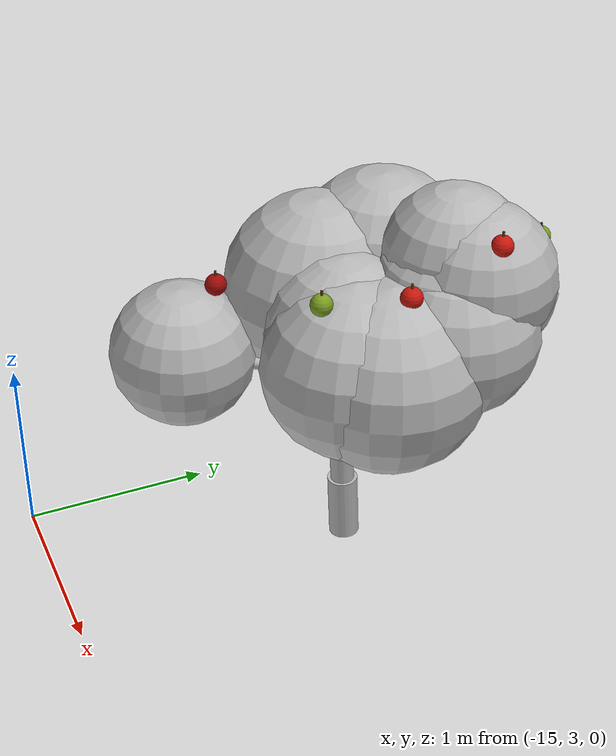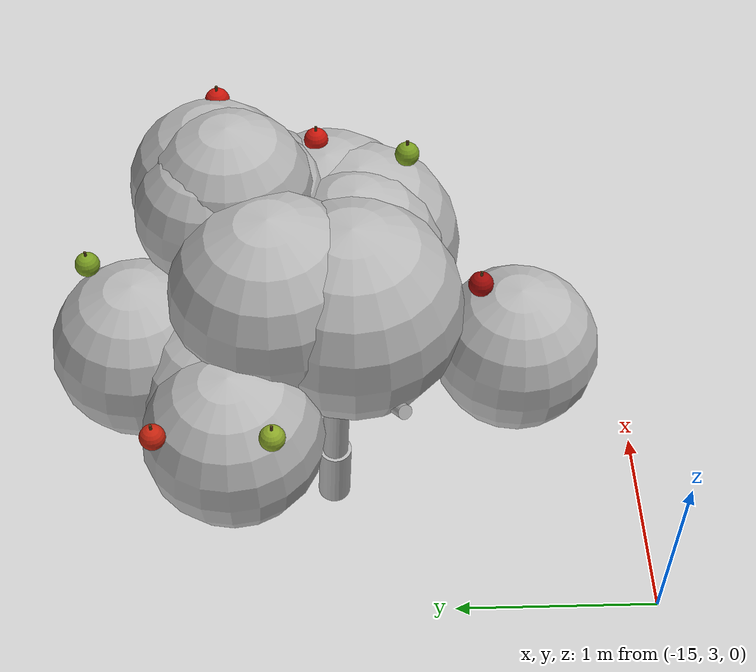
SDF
<sdf version="1.6">
 <world name="default">
  <model name="tree_r4_t1">
   <static>true</static>
   <link name="tree_r4_t1_trunk0">
    <pose>-14.2627 4.5879 0.1757 0.0320 -0.0273 0</pose>
    <collision name="tree_r4_t1_trunk0_c">
     <geometry><cylinder><radius>0.0819</radius><length>0.3724</length></cylinder></geometry>
    </collision>
    <visual name="tree_r4_t1_trunk0_v">
     <geometry><cylinder><radius>0.0819</radius><length>0.3724</length></cylinder></geometry>
     <material>
      <script>
       <uri>model://orchard/materials/scripts</uri>
       <uri>model://orchard/materials/textures</uri>
       <name>Orchard/Bark</name>
      </script>
     </material>
    </visual>
   </link>
   <link name="tree_r4_t1_trunk1">
    <pose>-14.2723 4.5766 0.5270 0.0320 -0.0273 0</pose>
    <visual name="tree_r4_t1_trunk1_v">
     <geometry><cylinder><radius>0.0639</radius><length>0.3724</length></cylinder></geometry>
     <material>
      <script>
       <uri>model://orchard/materials/scripts</uri>
       <uri>model://orchard/materials/textures</uri>
       <name>Orchard/Bark</name>
      </script>
     </material>
    </visual>
   </link>
   <link name="tree_r4_t1_trunk2">
    <pose>-14.2818 4.5654 0.8784 0.0320 -0.0273 0</pose>
    <visual name="tree_r4_t1_trunk2_v">
     <geometry><cylinder><radius>0.0459</radius><length>0.3724</length></cylinder></geometry>
     <material>
      <script>
       <uri>model://orchard/materials/scripts</uri>
       <uri>model://orchard/materials/textures</uri>
       <name>Orchard/Bark</name>
      </script>
     </material>
    </visual>
   </link>
   <link name="tree_r4_t1_br0">
    <pose>-14.0083 4.6179 1.2649 0.0000 0.9328 0.2061</pose>
    <visual name="tree_r4_t1_br0_v">
     <geometry><cylinder><radius>0.0259</radius><length>0.7080</length></cylinder></geometry>
     <material>
      <script>
       <uri>model://orchard/materials/scripts</uri>
       <uri>model://orchard/materials/textures</uri>
       <name>Orchard/Bark</name>
      </script>
     </material>
    </visual>
   </link>
   <link name="tree_r4_t1_br1">
    <pose>-14.1838 4.7425 1.3259 0.0000 0.6569 1.0582</pose>
    <visual name="tree_r4_t1_br1_v">
     <geometry><cylinder><radius>0.0263</radius><length>0.6866</length></cylinder></geometry>
     <material>
      <script>
       <uri>model://orchard/materials/scripts</uri>
       <uri>model://orchard/materials/textures</uri>
       <name>Orchard/Bark</name>
      </script>
     </material>
    </visual>
   </link>
   <link name="tree_r4_t1_br2">
    <pose>-14.2797 4.9413 1.2281 0.0000 1.1428 1.5525</pose>
    <visual name="tree_r4_t1_br2_v">
     <geometry><cylinder><radius>0.0227</radius><length>0.8388</length></cylinder></geometry>
     <material>
      <script>
       <uri>model://orchard/materials/scripts</uri>
       <uri>model://orchard/materials/textures</uri>
       <name>Orchard/Bark</name>
      </script>
     </material>
    </visual>
   </link>
   <link name="tree_r4_t1_br3">
    <pose>-14.5066 4.7124 1.2024 0.0000 1.0648 2.5350</pose>
    <visual name="tree_r4_t1_br3_v">
     <geometry><cylinder><radius>0.0351</radius><length>0.6122</length></cylinder></geometry>
     <material>
      <script>
       <uri>model://orchard/materials/scripts</uri>
       <uri>model://orchard/materials/textures</uri>
       <name>Orchard/Bark</name>
      </script>
     </material>
    </visual>
   </link>
   <link name="tree_r4_t1_br4">
    <pose>-14.5593 4.4156 1.2259 0.0000 1.0623 3.6281</pose>
    <visual name="tree_r4_t1_br4_v">
     <geometry><cylinder><radius>0.0335</radius><length>0.7061</length></cylinder></geometry>
     <material>
      <script>
       <uri>model://orchard/materials/scripts</uri>
       <uri>model://orchard/materials/textures</uri>
       <name>Orchard/Bark</name>
      </script>
     </material>
    </visual>
   </link>
   <link name="tree_r4_t1_br5">
    <pose>-14.2442 4.1810 1.2345 0.0000 1.1287 4.8240</pose>
    <visual name="tree_r4_t1_br5_v">
     <geometry><cylinder><radius>0.0294</radius><length>0.8434</length></cylinder></geometry>
     <material>
      <script>
       <uri>model://orchard/materials/scripts</uri>
       <uri>model://orchard/materials/textures</uri>
       <name>Orchard/Bark</name>
      </script>
     </material>
    </visual>
   </link>
   <link name="tree_r4_t1_br6">
    <pose>-14.0881 4.3539 1.2485 0.0000 0.9736 5.4797</pose>
    <visual name="tree_r4_t1_br6_v">
     <geometry><cylinder><radius>0.0221</radius><length>0.6917</length></cylinder></geometry>
     <material>
      <script>
       <uri>model://orchard/materials/scripts</uri>
       <uri>model://orchard/materials/textures</uri>
       <name>Orchard/Bark</name>
      </script>
     </material>
    </visual>
   </link>
   <link name="tree_r4_t1_fol0">
    <pose>-13.9051 4.6902 1.4569 0 0 0</pose>
    <visual name="tree_r4_t1_fol0_v">
     <geometry><sphere><radius>0.4121</radius></sphere></geometry>
     <material>
      <script>
       <uri>model://orchard/materials/scripts</uri>
       <uri>model://orchard/materials/textures</uri>
       <name>Orchard/Foliage2</name>
      </script>
     </material>
    </visual>
   </link>
   <link name="tree_r4_t1_fol1">
    <pose>-14.0121 5.0888 1.8020 0 0 0</pose>
    <visual name="tree_r4_t1_fol1_v">
     <geometry><sphere><radius>0.3483</radius></sphere></geometry>
     <material>
      <script>
       <uri>model://orchard/materials/scripts</uri>
       <uri>model://orchard/materials/textures</uri>
       <name>Orchard/Foliage2</name>
      </script>
     </material>
    </visual>
   </link>
   <link name="tree_r4_t1_fol2">
    <pose>-14.3782 5.4310 1.3282 0 0 0</pose>
    <visual name="tree_r4_t1_fol2_v">
     <geometry><sphere><radius>0.4002</radius></sphere></geometry>
     <material>
      <script>
       <uri>model://orchard/materials/scripts</uri>
       <uri>model://orchard/materials/textures</uri>
       <name>Orchard/Foliage3</name>
      </script>
     </material>
    </visual>
   </link>
   <link name="tree_r4_t1_fol3">
    <pose>-14.3863 4.8300 1.6701 0 0 0</pose>
    <visual name="tree_r4_t1_fol3_v">
     <geometry><sphere><radius>0.4539</radius></sphere></geometry>
     <material>
      <script>
       <uri>model://orchard/materials/scripts</uri>
       <uri>model://orchard/materials/textures</uri>
       <name>Orchard/Foliage0</name>
      </script>
     </material>
    </visual>
   </link>
   <link name="tree_r4_t1_fol4">
    <pose>-14.8549 5.0080 1.2864 0 0 0</pose>
    <visual name="tree_r4_t1_fol4_v">
     <geometry><sphere><radius>0.3954</radius></sphere></geometry>
     <material>
      <script>
       <uri>model://orchard/materials/scripts</uri>
       <uri>model://orchard/materials/textures</uri>
       <name>Orchard/Foliage2</name>
      </script>
     </material>
    </visual>
   </link>
   <link name="tree_r4_t1_fol5">
    <pose>-14.4146 3.7562 1.3201 0 0 0</pose>
    <visual name="tree_r4_t1_fol5_v">
     <geometry><sphere><radius>0.3715</radius></sphere></geometry>
     <material>
      <script>
       <uri>model://orchard/materials/scripts</uri>
       <uri>model://orchard/materials/textures</uri>
       <name>Orchard/Foliage0</name>
      </script>
     </material>
    </visual>
   </link>
   <link name="tree_r4_t1_fol6">
    <pose>-13.7680 4.9394 1.5489 0 0 0</pose>
    <visual name="tree_r4_t1_fol6_v">
     <geometry><sphere><radius>0.4234</radius></sphere></geometry>
     <material>
      <script>
       <uri>model://orchard/materials/scripts</uri>
       <uri>model://orchard/materials/textures</uri>
       <name>Orchard/Foliage1</name>
      </script>
     </material>
    </visual>
   </link>
   <link name="tree_r4_t1_fol7">
    <pose>-14.0427 5.0166 1.6695 0 0 0</pose>
    <visual name="tree_r4_t1_fol7_v">
     <geometry><sphere><radius>0.3456</radius></sphere></geometry>
     <material>
      <script>
       <uri>model://orchard/materials/scripts</uri>
       <uri>model://orchard/materials/textures</uri>
       <name>Orchard/Foliage3</name>
      </script>
     </material>
    </visual>
   </link>
   <link name="tree_r4_t1_fol8">
    <pose>-13.8297 5.0838 1.7919 0 0 0</pose>
    <visual name="tree_r4_t1_fol8_v">
     <geometry><sphere><radius>0.3870</radius></sphere></geometry>
     <material>
      <script>
       <uri>model://orchard/materials/scripts</uri>
       <uri>model://orchard/materials/textures</uri>
       <name>Orchard/Foliage0</name>
      </script>
     </material>
    </visual>
   </link>
   <link name="tree_r4_t1_fol9">
    <pose>-13.8985 4.9658 1.6613 0 0 0</pose>
    <visual name="tree_r4_t1_fol9_v">
     <geometry><sphere><radius>0.4145</radius></sphere></geometry>
     <material>
      <script>
       <uri>model://orchard/materials/scripts</uri>
       <uri>model://orchard/materials/textures</uri>
       <name>Orchard/Foliage2</name>
      </script>
     </material>
    </visual>
   </link>
   <link name="tree_r4_t1_fol10">
    <pose>-13.7546 4.5904 1.4029 0 0 0</pose>
    <visual name="tree_r4_t1_fol10_v">
     <geometry><sphere><radius>0.4906</radius></sphere></geometry>
     <material>
      <script>
       <uri>model://orchard/materials/scripts</uri>
       <uri>model://orchard/materials/textures</uri>
       <name>Orchard/Foliage2</name>
      </script>
     </material>
    </visual>
   </link>
   <link name="tree_r4_t1_fol11">
    <pose>-14.0325 4.4629 1.5354 0 0 0</pose>
    <visual name="tree_r4_t1_fol11_v">
     <geometry><sphere><radius>0.3999</radius></sphere></geometry>
     <material>
      <script>
       <uri>model://orchard/materials/scripts</uri>
       <uri>model://orchard/materials/textures</uri>
       <name>Orchard/Foliage0</name>
      </script>
     </material>
    </visual>
   </link>
   <link name="tree_r4_t1_fol12">
    <pose>-14.3827 4.4836 1.5660 0 0 0</pose>
    <visual name="tree_r4_t1_fol12_v">
     <geometry><sphere><radius>0.4907</radius></sphere></geometry>
     <material>
      <script>
       <uri>model://orchard/materials/scripts</uri>
       <uri>model://orchard/materials/textures</uri>
       <name>Orchard/Foliage3</name>
      </script>
     </material>
    </visual>
   </link>
   <link name="tree_r4_t1_fol13">
    <pose>-14.5468 5.0566 1.2766 0 0 0</pose>
    <visual name="tree_r4_t1_fol13_v">
     <geometry><sphere><radius>0.4097</radius></sphere></geometry>
     <material>
      <script>
       <uri>model://orchard/materials/scripts</uri>
       <uri>model://orchard/materials/textures</uri>
       <name>Orchard/Foliage1</name>
      </script>
     </material>
    </visual>
   </link>
   <link name="tree_r4_t1_fol14">
    <pose>-13.8438 4.4446 1.4292 0 0 0</pose>
    <visual name="tree_r4_t1_fol14_v">
     <geometry><sphere><radius>0.4684</radius></sphere></geometry>
     <material>
      <script>
       <uri>model://orchard/materials/scripts</uri>
       <uri>model://orchard/materials/textures</uri>
       <name>Orchard/Foliage1</name>
      </script>
     </material>
    </visual>
   </link>
   <link name="tree_r4_t1_fol15">
    <pose>-13.9469 5.0075 1.8630 0 0 0</pose>
    <visual name="tree_r4_t1_fol15_v">
     <geometry><sphere><radius>0.3668</radius></sphere></geometry>
     <material>
      <script>
       <uri>model://orchard/materials/scripts</uri>
       <uri>model://orchard/materials/textures</uri>
       <name>Orchard/Foliage3</name>
      </script>
     </material>
    </visual>
   </link>
   <link name="tree_r4_t1_ap0">
    <pose>-13.7541 4.2269 1.8905 0 0 0</pose>
    <visual name="tree_r4_t1_ap0_v">
     <geometry><sphere><radius>0.0550</radius></sphere></geometry>
     <material>
      <ambient>0.192 0.248 0.052 1.00</ambient>
      <diffuse>0.480 0.620 0.130 1.00</diffuse>
      <specular>0.45 0.35 0.32 1</specular>
     </material>
    </visual>
   </link>
   <link name="tree_r4_t1_st0">
    <pose>-13.7541 4.2269 1.9427 0 0 0</pose>
    <visual name="tree_r4_t1_st0_v">
     <geometry><cylinder><radius>0.0060</radius><length>0.0500</length></cylinder></geometry>
     <material><ambient>0.128 0.096 0.040 1.00</ambient><diffuse>0.320 0.240 0.100 1.00</diffuse></material>
    </visual>
   </link>
   <link name="tree_r4_t1_ap1">
    <pose>-14.3780 3.9311 1.7013 0 0 0</pose>
    <visual name="tree_r4_t1_ap1_v">
     <geometry><sphere><radius>0.0550</radius></sphere></geometry>
     <material>
      <ambient>0.248 0.016 0.012 1.00</ambient>
      <diffuse>0.620 0.040 0.030 1.00</diffuse>
      <specular>0.45 0.35 0.32 1</specular>
     </material>
    </visual>
   </link>
   <link name="tree_r4_t1_st1">
    <pose>-14.3780 3.9311 1.7535 0 0 0</pose>
    <visual name="tree_r4_t1_st1_v">
     <geometry><cylinder><radius>0.0060</radius><length>0.0500</length></cylinder></geometry>
     <material><ambient>0.128 0.096 0.040 1.00</ambient><diffuse>0.320 0.240 0.100 1.00</diffuse></material>
    </visual>
   </link>
   <link name="tree_r4_t1_ap2">
    <pose>-13.6482 4.6344 1.8899 0 0 0</pose>
    <visual name="tree_r4_t1_ap2_v">
     <geometry><sphere><radius>0.0550</radius></sphere></geometry>
     <material>
      <ambient>0.320 0.036 0.020 1.00</ambient>
      <diffuse>0.800 0.090 0.050 1.00</diffuse>
      <specular>0.45 0.35 0.32 1</specular>
     </material>
    </visual>
   </link>
   <link name="tree_r4_t1_st2">
    <pose>-13.6482 4.6344 1.9422 0 0 0</pose>
    <visual name="tree_r4_t1_st2_v">
     <geometry><cylinder><radius>0.0060</radius><length>0.0500</length></cylinder></geometry>
     <material><ambient>0.128 0.096 0.040 1.00</ambient><diffuse>0.320 0.240 0.100 1.00</diffuse></material>
    </visual>
   </link>
   <link name="tree_r4_t1_ap3">
    <pose>-14.2028 5.6417 1.6847 0 0 0</pose>
    <visual name="tree_r4_t1_ap3_v">
     <geometry><sphere><radius>0.0550</radius></sphere></geometry>
     <material>
      <ambient>0.192 0.248 0.052 1.00</ambient>
      <diffuse>0.480 0.620 0.130 1.00</diffuse>
      <specular>0.45 0.35 0.32 1</specular>
     </material>
    </visual>
   </link>
   <link name="tree_r4_t1_st3">
    <pose>-14.2028 5.6417 1.7370 0 0 0</pose>
    <visual name="tree_r4_t1_st3_v">
     <geometry><cylinder><radius>0.0060</radius><length>0.0500</length></cylinder></geometry>
     <material><ambient>0.128 0.096 0.040 1.00</ambient><diffuse>0.320 0.240 0.100 1.00</diffuse></material>
    </visual>
   </link>
   <link name="tree_r4_t1_ap4">
    <pose>-13.6051 5.0652 2.0936 0 0 0</pose>
    <visual name="tree_r4_t1_ap4_v">
     <geometry><sphere><radius>0.0550</radius></sphere></geometry>
     <material>
      <ambient>0.320 0.036 0.020 1.00</ambient>
      <diffuse>0.800 0.090 0.050 1.00</diffuse>
      <specular>0.45 0.35 0.32 1</specular>
     </material>
    </visual>
   </link>
   <link name="tree_r4_t1_st4">
    <pose>-13.6051 5.0652 2.1459 0 0 0</pose>
    <visual name="tree_r4_t1_st4_v">
     <geometry><cylinder><radius>0.0060</radius><length>0.0500</length></cylinder></geometry>
     <material><ambient>0.128 0.096 0.040 1.00</ambient><diffuse>0.320 0.240 0.100 1.00</diffuse></material>
    </visual>
   </link>
   <link name="tree_r4_t1_ap5">
    <pose>-15.0452 5.3139 1.5474 0 0 0</pose>
    <visual name="tree_r4_t1_ap5_v">
     <geometry><sphere><radius>0.0550</radius></sphere></geometry>
     <material>
      <ambient>0.312 0.056 0.024 1.00</ambient>
      <diffuse>0.780 0.140 0.060 1.00</diffuse>
      <specular>0.45 0.35 0.32 1</specular>
     </material>
    </visual>
   </link>
   <link name="tree_r4_t1_st5">
    <pose>-15.0452 5.3139 1.5996 0 0 0</pose>
    <visual name="tree_r4_t1_st5_v">
     <geometry><cylinder><radius>0.0060</radius><length>0.0500</length></cylinder></geometry>
     <material><ambient>0.128 0.096 0.040 1.00</ambient><diffuse>0.320 0.240 0.100 1.00</diffuse></material>
    </visual>
   </link>
   <link name="tree_r4_t1_ap6">
    <pose>-15.1040 4.8218 1.6045 0 0 0</pose>
    <visual name="tree_r4_t1_ap6_v">
     <geometry><sphere><radius>0.0550</radius></sphere></geometry>
     <material>
      <ambient>0.220 0.264 0.064 1.00</ambient>
      <diffuse>0.550 0.660 0.160 1.00</diffuse>
      <specular>0.45 0.35 0.32 1</specular>
     </material>
    </visual>
   </link>
   <link name="tree_r4_t1_st6">
    <pose>-15.1040 4.8218 1.6567 0 0 0</pose>
    <visual name="tree_r4_t1_st6_v">
     <geometry><cylinder><radius>0.0060</radius><length>0.0500</length></cylinder></geometry>
     <material><ambient>0.128 0.096 0.040 1.00</ambient><diffuse>0.320 0.240 0.100 1.00</diffuse></material>
    </visual>
   </link>
  </model>
 </world>
</sdf>
